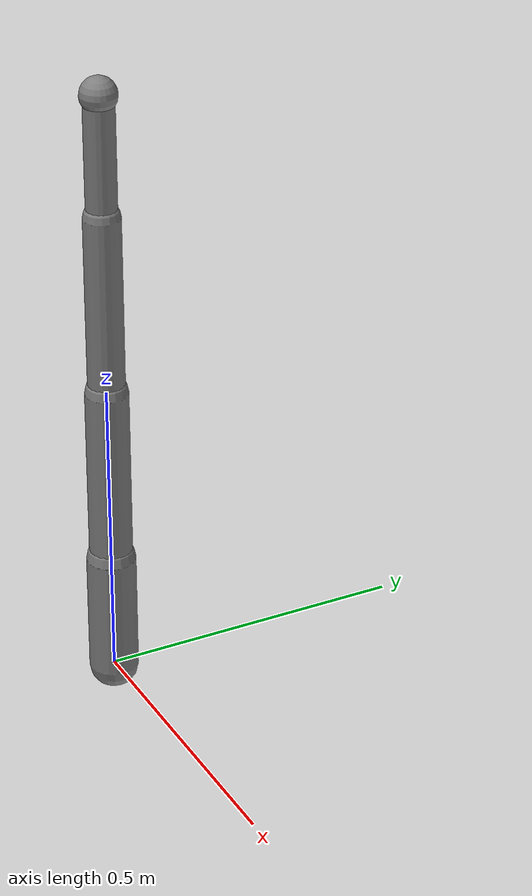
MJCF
<mujoco model="htdp_arm">
  <option timestep="0.01"/>
  <worldbody>
    <body name="link0">
      <joint name="j0" type="hinge" axis="0 0 1"/>
      <geom type="capsule" fromto="0 0 0 0 0 0.2" size="0.04"/>
      <body name="link1" pos="0 0 0.2">
        <joint name="j1" type="hinge" axis="0 1 0"/>
        <geom type="capsule" fromto="0 0 0 0 0 0.3" size="0.035"/>
        <body name="link2" pos="0 0 0.3">
          <joint name="j2" type="hinge" axis="0 1 0"/>
          <geom type="capsule" fromto="0 0 0 0 0 0.3" size="0.03"/>
          <body name="link3" pos="0 0 0.3">
            <joint name="j3" type="hinge" axis="0 1 0"/>
            <geom type="capsule" fromto="0 0 0 0 0 0.2" size="0.025"/>
            <body name="eef" pos="0 0 0.2">
              <joint name="j4" type="hinge" axis="0 1 0"/>
              <geom type="sphere" size="0.03"/>
            </body>
          </body>
        </body>
      </body>
    </body>
  </worldbody>
</mujoco>
